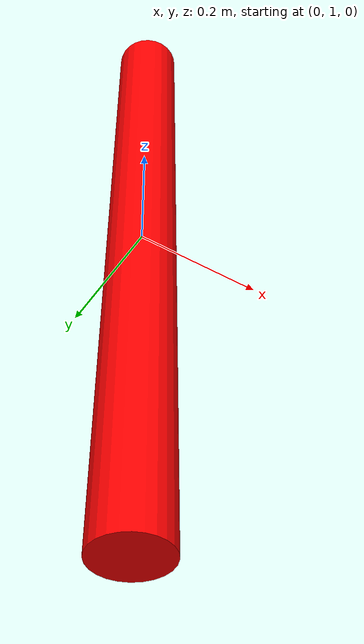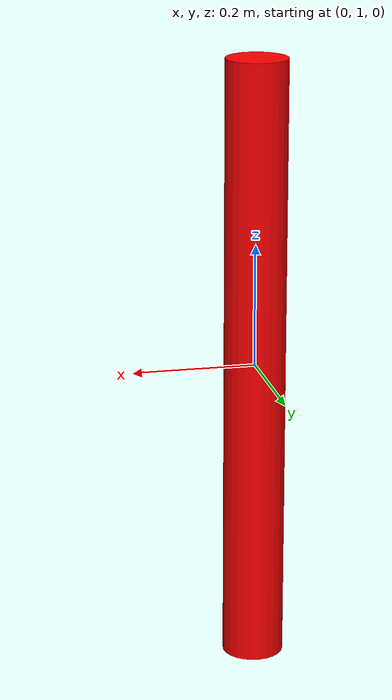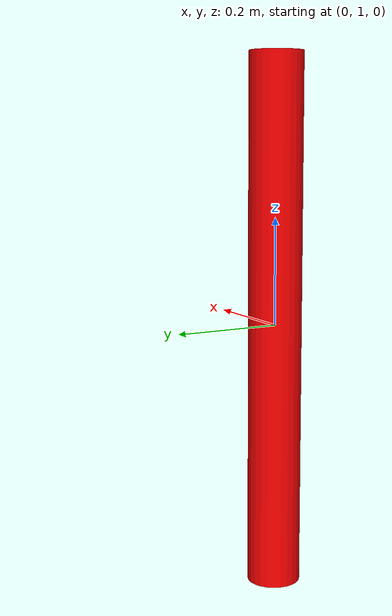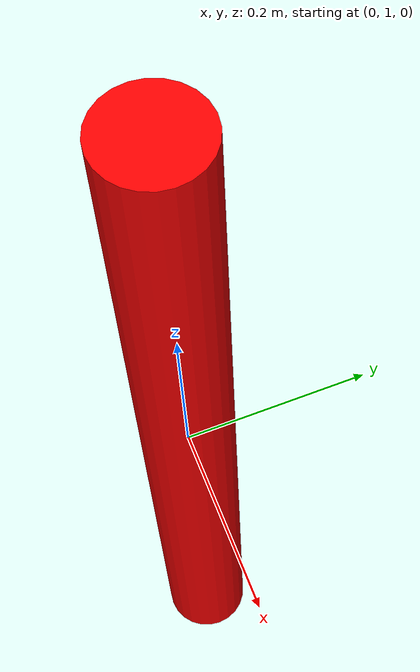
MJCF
<mujoco model="push joint">
  <compiler angle="radian" meshdir="assets" autolimits="true"/>

  <option integrator="implicitfast" impratio="10"/>

  <default>
    <default class="push">
      <material specular="0.5" shininess="0.25"/>
      <default class="push/visual">
        <geom type="cylinder" size="0.05 0.5" group="2" rgba="1 0 0 1"/>
      </default>
      <default class="push/collision">
        <geom type="cylinder" size="0.05 0.5" group="2" rgba="1 0 0 1"/>
      </default>
    </default>
  </default>

    <worldbody>
        <body name="push joint" pos="0 1 0" >
          <joint name="push_joint1"  type="hinge" axis="0 1 0" pos="0 1 0" />
          <freejoint/>
          <geom type="cylinder" size="0.05 0.5" group="2" rgba="1 0 0 1"/>
        </body>
    </worldbody>
</mujoco>
